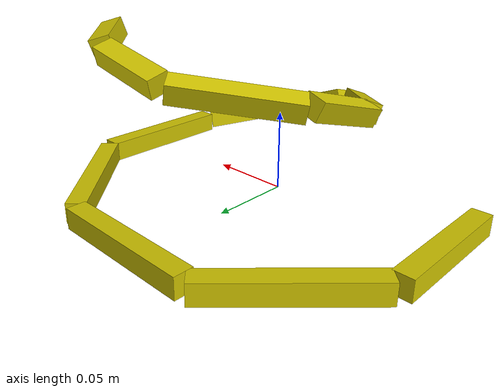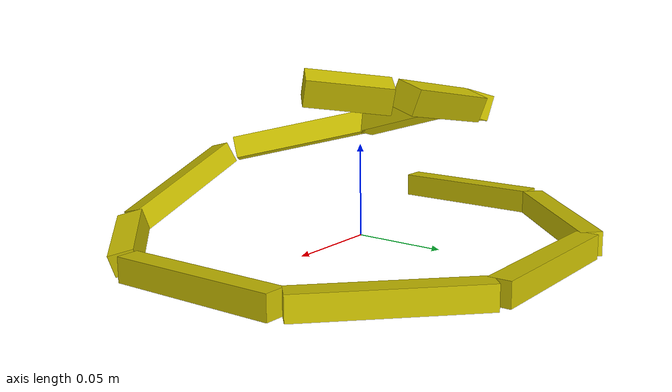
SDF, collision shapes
<sdf version="1.9">
<model name="Nautilus" canonical_link="root">
  <link name="root">
    <collision name="nautilus_assembly_collision">
      <pose>-0.11312 0.00183 0.00353 0.00000 0.00000 0.00000</pose>
      <geometry>
        <box>
          <size>0.01211 0.08489 0.01305</size>
        </box>
      </geometry>
      <surface>
        <contact/>
      </surface>
    </collision>
    <collision name="nautilus_assembly_collision.001">
      <pose>-0.07739 0.08090 0.00353 0.00000 0.00000 -0.78164</pose>
      <geometry>
        <box>
          <size>0.01211 0.09572 0.01305</size>
        </box>
      </geometry>
      <surface>
        <contact/>
      </surface>
    </collision>
    <collision name="nautilus_assembly_collision.002">
      <pose>0.00550 0.11362 0.00353 0.00000 0.00000 -1.56840</pose>
      <geometry>
        <box>
          <size>0.01211 0.09317 0.01305</size>
        </box>
      </geometry>
      <surface>
        <contact/>
      </surface>
    </collision>
    <collision name="nautilus_assembly_collision.003">
      <pose>0.08618 0.07991 0.00353 0.00000 0.00000 -2.36655</pose>
      <geometry>
        <box>
          <size>0.01211 0.09317 0.01305</size>
        </box>
      </geometry>
      <surface>
        <contact/>
      </surface>
    </collision>
    <collision name="nautilus_assembly_collision.004">
      <pose>0.12030 -0.00238 0.00353 0.00000 0.00000 3.13952</pose>
      <geometry>
        <box>
          <size>0.01211 0.09317 0.01305</size>
        </box>
      </geometry>
      <surface>
        <contact/>
      </surface>
    </collision>
    <collision name="nautilus_assembly_collision.005">
      <pose>0.10186 -0.06870 0.00826 0.64561 1.23038 2.93121</pose>
      <geometry>
        <box>
          <size>0.01211 0.04520 0.01305</size>
        </box>
      </geometry>
      <surface>
        <contact/>
      </surface>
    </collision>
    <collision name="nautilus_assembly_collision.006">
      <pose>0.04738 -0.08653 0.02507 0.93644 1.12197 2.47152</pose>
      <geometry>
        <box>
          <size>0.01211 0.07245 0.01305</size>
        </box>
      </geometry>
      <surface>
        <contact/>
      </surface>
    </collision>
    <collision name="nautilus_assembly_collision.007">
      <pose>-0.01930 -0.05738 0.04675 0.60072 1.21964 1.27372</pose>
      <geometry>
        <box>
          <size>0.01211 0.07613 0.01305</size>
        </box>
      </geometry>
      <surface>
        <contact/>
      </surface>
    </collision>
    <collision name="nautilus_assembly_collision.008">
      <pose>-0.04264 -0.00257 0.06099 0.80054 1.16632 0.71791</pose>
      <geometry>
        <box>
          <size>0.01211 0.05561 0.01305</size>
        </box>
      </geometry>
      <surface>
        <contact/>
      </surface>
    </collision>
    <collision name="nautilus_assembly_collision.009">
      <pose>-0.01502 0.05299 0.07389 0.43757 1.24622 -0.40363</pose>
      <geometry>
        <box>
          <size>0.01211 0.07379 0.01305</size>
        </box>
      </geometry>
      <surface>
        <contact/>
      </surface>
    </collision>
    <collision name="nautilus_assembly_collision.010">
      <pose>0.04328 0.07660 0.08392 0.54220 1.23293 -1.09511</pose>
      <geometry>
        <box>
          <size>0.01211 0.05388 0.01305</size>
        </box>
      </geometry>
      <surface>
        <contact/>
      </surface>
    </collision>
    <collision name="nautilus_assembly_collision.011">
      <pose>0.08911 0.05940 0.09169 0.39379 1.25566 -1.99419</pose>
      <geometry>
        <box>
          <size>0.01211 0.03755 0.01305</size>
        </box>
      </geometry>
      <surface>
        <contact/>
      </surface>
    </collision>
    <inertial>
      <inertia>
        <ixx>0.00064</ixx>
        <ixy>0.00010</ixy>
        <ixz>-0.00002</ixz>
        <iyy>0.00083</iyy>
        <iyz>0.00000</iyz>
        <izz>0.00124</izz>
      </inertia>
      <pose>0.01605 0.02333 0.02915 0.00000 0.00000 0.00000</pose>
      <mass>0.18700</mass>
    </inertial>
    <visual name="nautilus_assembly">
      <material>
        <diffuse>0.80000 0.75294 0.00000 1.00000</diffuse>
        <specular>0.02745 0.02745 0.02745 1.00000</specular>
        <emissive>0.00000 0.00000 0.00000 1.00000</emissive>
      </material>
      <pose>0.00000 0.00000 0.00000 0.00000 0.00000 0.00000</pose>
      <geometry>
        <mesh>
          <uri>../meshes/dae/nautilus_assembly.dae</uri>
          <scale>1.00000 1.00000 1.00000</scale>
        </mesh>
      </geometry>
    </visual>
  </link>
</model>
</sdf>
